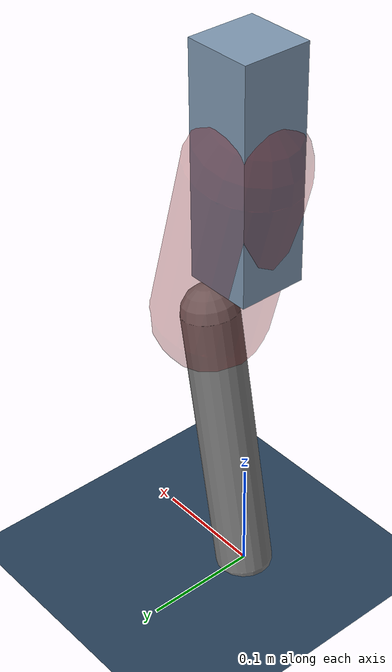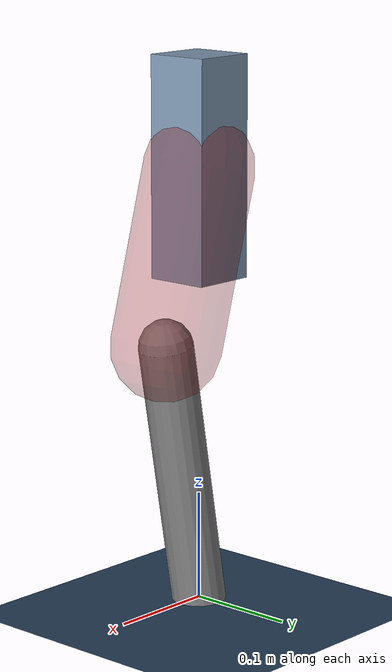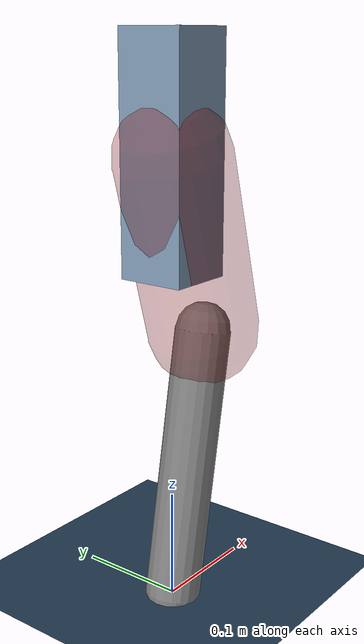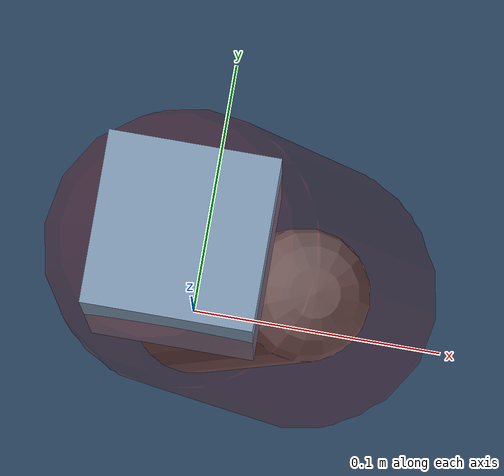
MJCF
<mujoco model="Hopper2D">
	<compiler inertiafromgeom="true" angle="radian" />
	<option timestep="0.001" integrator="implicit" cone="elliptic" solver="Newton" tolerance="1e-10" />

	<default>
		<geom contype="1" conaffinity="1" condim="3" friction="2 0.005 0.0001" solref="0.005 1" />
		<joint limited="true" damping="0.1" />
	</default>

	<asset>
		<texture name="skybox" type="skybox" builtin="gradient" rgb1=".4 .6 .8" rgb2="0 0 0" width="800" height="800" />
		<texture name="grid" type="2d" builtin="checker" rgb1=".1 .2 .3" rgb2=".2 .3 .4" width="300" height="300" mark="edge" markrgb=".2 .3 .4" />
		<material name="ground" texture="grid" texrepeat="1 1" texuniform="true" reflectance="0.1" />
		<material name="leg" rgba="0.5 0.6 0.7 1" />
	</asset>

	<worldbody>

		<geom name="floor" type="plane" size="5 5 0.25" material="ground" />

		<light directional="false" diffuse="0.8 0.8 0.8" specular="0.3 0.3 0.3" pos="0 0 2" dir="0 0 -1" />
		<light mode="targetbodycom" target="base" directional="false" diffuse="0.8 0.8 0.8" specular="0.3 0.3 0.3" pos="0 0 2" dir="0 0 -1" />

		<camera name="fixed" pos="0 -2 1" xyaxes="1 0 0 0 0 1" />
		<camera name="tracking" mode="trackcom" pos="0 -3 1" />

		<body name="root" pos="0 0 0.40077355468935627">
			<joint name="slide_x" type="slide" axis="1 0 0" range="-100 100" />
			<joint name="slide_z" type="slide" axis="0 0 1" range="0 10" />

			<body name="base" pos="0 0 0">
				<geom name="torso" type="box" size="0.03 0.03 0.1" mass="1.9819999999999998" material="leg" />

				<body name="link1" pos="0 0 0" euler="0 1.2954157522054555 0">
					<joint type="hinge" axis="0 -1 0" pos="0 0 0" name="hinge1" limited="true" range="-3.14 3.14" stiffness="0" damping="0.1" />
					<geom name="thigh" type="capsule" fromto="0 0 0 0.1616599850052111 0 0" size="0.05" rgba="0.5 0 0 0.3" mass="0.6362839640125066" />

					<body name="link2" pos="0.1616599850052111 0 0" euler="0 0.45276494413644713 0">
						<joint type="hinge" axis="0 -1 0" pos="0 0 0" name="hinge2" limited="true" range="-3.14 3.14" stiffness="0" damping="0.1" />
						<geom name="shank" type="capsule" fromto="0 0 0 0.24911356968414522 0 0" size="0.025" mass="0.44179085574731614" />

					</body>
				</body>
			</body>
		</body>
	</worldbody>

	<actuator>
		<motor name="torque1" joint="hinge1" ctrlrange="-55.15284115730414 55.15284115730414" ctrllimited="true" gear="1" />
		<motor name="torque2" joint="hinge2" ctrlrange="-66.7949815337383 66.7949815337383" ctrllimited="true" gear="1" />
	</actuator>
</mujoco>
